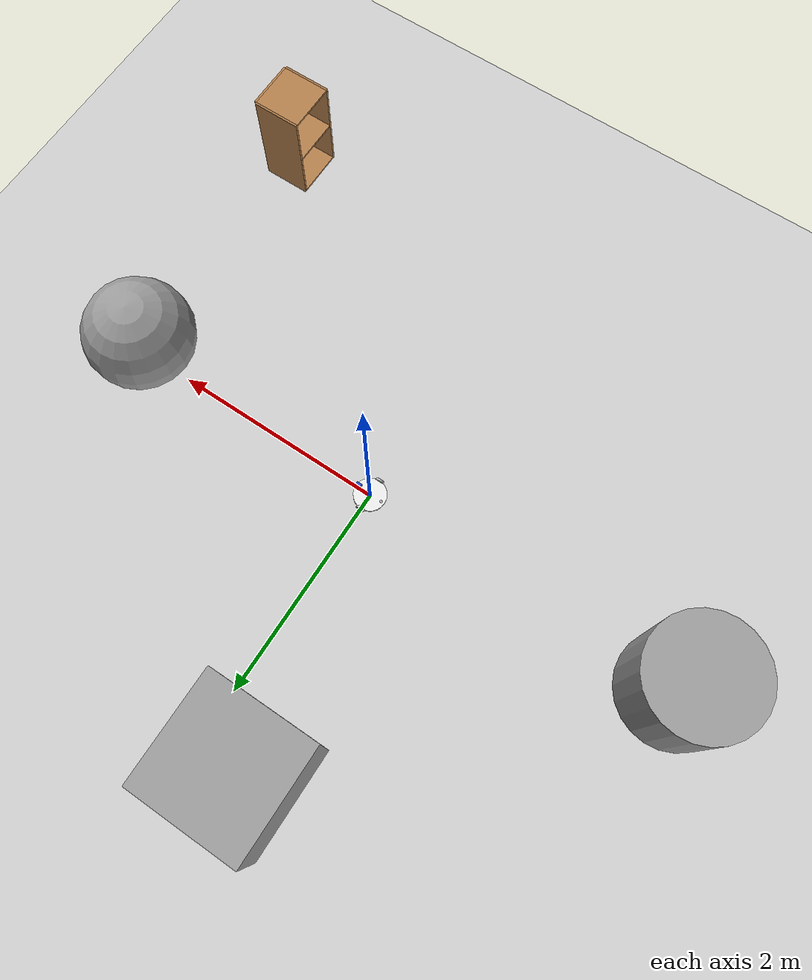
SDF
<sdf version="1.4">
 <world name="default">
  <light name="sun" type="directional">
   <pose>0 0 10 0 -0 0</pose>
   <diffuse>0.8 0.8 0.8 1</diffuse>
   <specular>0.2 0.2 0.2 1</specular>
   <attenuation>
    <range>1000</range>
    <constant>0.9</constant>
    <linear>0.01</linear>
    <quadratic>0.001</quadratic>
   </attenuation>
   <direction>-0.5 0.1 -0.9</direction>
  </light>
  <model name="ground_plane">
   <static>1</static>
   <link name="link">
    <collision name="collision">
     <geometry><plane><normal>0 0 1</normal><size>100 100</size></plane></geometry>
     <surface><friction><ode><mu>100</mu><mu2>50</mu2></ode></friction></surface>
    </collision>
    <visual name="visual">
     <cast_shadows>0</cast_shadows>
     <geometry><plane><normal>0 0 1</normal><size>100 100</size></plane></geometry>
     <material>
      <script><uri>file://media/materials/scripts/gazebo.material</uri><name>Gazebo/Grey</name></script>
     </material>
    </visual>
    <velocity_decay><linear>0</linear><angular>0</angular></velocity_decay>
   </link>
  </model>
  <physics type="ode">
   <max_step_size>0.001</max_step_size>
   <real_time_factor>1</real_time_factor>
   <real_time_update_rate>1000</real_time_update_rate>
   <gravity>0 0 -9.8</gravity>
  </physics>
  <scene><ambient>0.4 0.4 0.4 1</ambient><background>0.7 0.7 0.7 1</background><shadows>1</shadows></scene>
  <spherical_coordinates>
   <surface_model>EARTH_WGS84</surface_model>
   <latitude_deg>0</latitude_deg>
   <longitude_deg>0</longitude_deg>
   <elevation>0</elevation>
   <heading_deg>0</heading_deg>
  </spherical_coordinates>
  <model name="simple_robot">
   <link name="base_link">
    <inertial>
     <pose>-0.00166667 0 0.00133333 0 -0 0</pose>
     <mass>6</mass>
     <inertia>
      <ixx>0.030346</ixx>
      <ixy>0</ixy>
      <ixz>0.000191667</ixz>
      <iyy>0.0460543</iyy>
      <iyz>0</iyz>
      <izz>0.0739583</izz>
     </inertia>
    </inertial>
    <collision name="base_link_collision">
     <geometry><cylinder><length>0.02</length><radius>0.15</radius></cylinder></geometry>
    </collision>
    <collision name="base_link_collision_caster_back_link">
     <pose>-0.135 9.79355e-14 -0.011 0 -0 0</pose>
     <geometry><sphere><radius>0.025</radius></sphere></geometry>
    </collision>
    <collision name="base_link_collision_caster_front_link">
     <pose>0.115 9.79355e-14 -0.013 0 -0 0</pose>
     <geometry><sphere><radius>0.025</radius></sphere></geometry>
    </collision>
    <visual name="base_link_visual">
     <geometry><cylinder><length>0.02</length><radius>0.15</radius></cylinder></geometry>
     <material><script><name>Gazebo/White</name><uri>__default__</uri></script></material>
    </visual>
    <visual name="base_link_visual_caster_back_link">
     <pose>-0.115 9.79355e-14 -0.011 0 -0 0</pose>
     <geometry><sphere><radius>0.025</radius></sphere></geometry>
    </visual>
    <visual name="base_link_visual_caster_front_link">
     <pose>0.115 9.79355e-14 -0.013 0 -0 0</pose>
     <geometry><sphere><radius>0.025</radius></sphere></geometry>
    </visual>
    <visual name="base_link_visual_hokuyo_link">
     <pose>0.125 0 0.0325 0 -0 0</pose>
     <geometry><box><size>0.05 0.05 0.05</size></box></geometry>
     <material><script><name>Gazebo/Blue</name><uri>__default__</uri></script></material>
    </visual>
    <velocity_decay><linear>0</linear><angular>0</angular></velocity_decay>
    <velocity_decay><linear>0</linear><angular>0</angular></velocity_decay>
    <sensor name="head_hokuyo_sensor" type="ray">
     <visualize>0</visualize>
     <update_rate>40</update_rate>
     <ray>
      <scan>
       <horizontal>
        <samples>720</samples>
        <resolution>1</resolution>
        <min_angle>-1.5708</min_angle>
        <max_angle>1.5708</max_angle>
       </horizontal>
      </scan>
      <range><min>0.1</min><max>10</max><resolution>0.001</resolution></range>
     </ray>
     <plugin name="gazebo_ros_head_hokuyo_controller" filename="libgazebo_ros_laser.so">
      <topicName>/scan</topicName>
      <frameName>hokuyo_link</frameName>
      <robotNamespace>/</robotNamespace>
     </plugin>
     <pose>0.125 0 0.0325 0 -0 0</pose>
    </sensor>
   </link>
   <link name="front_left_wheel">
    <pose>0 -0.15 0 0 -0 0</pose>
    <inertial>
     <mass>2.5</mass>
     <inertia>
      <ixx>0.00108333</ixx>
      <ixy>0</ixy>
      <ixz>0</ixz>
      <iyy>0.00108333</iyy>
      <iyz>0</iyz>
      <izz>0.002</izz>
     </inertia>
    </inertial>
    <collision name="front_left_wheel_collision">
     <pose>0 0 0 1.5708 -0 0</pose>
     <geometry><cylinder><length>0.02</length><radius>0.04</radius></cylinder></geometry>
    </collision>
    <visual name="front_left_wheel_visual">
     <pose>0 0 0 1.5708 -0 0</pose>
     <geometry><cylinder><length>0.02</length><radius>0.04</radius></cylinder></geometry>
    </visual>
    <velocity_decay><linear>0</linear><angular>0</angular></velocity_decay>
   </link>
   <joint name="front_left_wheel_joint" type="revolute">
    <child>front_left_wheel</child>
    <parent>base_link</parent>
    <axis><xyz>0 1 0</xyz><limit><lower>-1e+16</lower><upper>1e+16</upper></limit></axis>
   </joint>
   <link name="front_right_wheel">
    <pose>0 0.15 0 0 -0 0</pose>
    <inertial>
     <mass>2.5</mass>
     <inertia>
      <ixx>0.00108333</ixx>
      <ixy>0</ixy>
      <ixz>0</ixz>
      <iyy>0.00108333</iyy>
      <iyz>0</iyz>
      <izz>0.002</izz>
     </inertia>
    </inertial>
    <collision name="front_right_wheel_collision">
     <pose>0 0 0 1.5708 -0 0</pose>
     <geometry><cylinder><length>0.02</length><radius>0.04</radius></cylinder></geometry>
    </collision>
    <visual name="front_right_wheel_visual">
     <pose>0 0 0 1.5708 -0 0</pose>
     <geometry><cylinder><length>0.02</length><radius>0.04</radius></cylinder></geometry>
    </visual>
    <velocity_decay><linear>0</linear><angular>0</angular></velocity_decay>
   </link>
   <joint name="front_right_wheel_joint" type="revolute">
    <child>front_right_wheel</child>
    <parent>base_link</parent>
    <axis><xyz>0 1 0</xyz><limit><lower>-1e+16</lower><upper>1e+16</upper></limit></axis>
   </joint>
   <static>0</static>
   <plugin name="differential_drive_controller_front" filename="libgazebo_ros_diff_drive.so">
    <rosDebugLevel>Debug</rosDebugLevel>
    <publishWheelTF>True</publishWheelTF>
    <publishTf>1</publishTf>
    <publishWheelJointState>true</publishWheelJointState>
    <alwaysOn>true</alwaysOn>
    <updateRate>100.0</updateRate>
    <leftJoint>front_left_wheel_joint</leftJoint>
    <rightJoint>front_right_wheel_joint</rightJoint>
    <wheelSeparation>0.3</wheelSeparation>
    <wheelDiameter>0.08</wheelDiameter>
    <broadcastTF>1</broadcastTF>
    <wheelTorque>30</wheelTorque>
    <wheelAcceleration>1.8</wheelAcceleration>
    <commandTopic>cmd_vel</commandTopic>
    <odometryFrame>odom</odometryFrame>
    <odometryTopic>odom</odometryTopic>
    <robotBaseFrame>base_link</robotBaseFrame>
    <robotNamespace>/</robotNamespace>
   </plugin>
   <pose>-0.000486 -0.000185 0.04 -1.69481e-21 -0.02967 0.000481</pose>
  </model>
  <model name="unit_box_1">
   <pose>-0.417076 2.4488 0.5 0 -0 0</pose>
   <link name="link">
    <inertial>
     <mass>1</mass>
     <inertia><ixx>1</ixx><ixy>0</ixy><ixz>0</ixz><iyy>1</iyy><iyz>0</iyz><izz>1</izz></inertia>
    </inertial>
    <collision name="collision"><geometry><box><size>1 1 1</size></box></geometry></collision>
    <visual name="visual">
     <geometry><box><size>1 1 1</size></box></geometry>
     <material>
      <script><uri>file://media/materials/scripts/gazebo.material</uri><name>Gazebo/Grey</name></script>
     </material>
    </visual>
    <velocity_decay><linear>0</linear><angular>0</angular></velocity_decay>
   </link>
   <static>0</static>
  </model>
  <model name="unit_cylinder_1">
   <pose>-3 -0 0.499998 1e-06 -0 0</pose>
   <link name="link">
    <inertial>
     <mass>1</mass>
     <inertia><ixx>1</ixx><ixy>0</ixy><ixz>0</ixz><iyy>1</iyy><iyz>0</iyz><izz>1</izz></inertia>
    </inertial>
    <collision name="collision">
     <geometry><cylinder><radius>0.5</radius><length>1</length></cylinder></geometry>
    </collision>
    <visual name="visual">
     <geometry><cylinder><radius>0.5</radius><length>1</length></cylinder></geometry>
     <material>
      <script><uri>file://media/materials/scripts/gazebo.material</uri><name>Gazebo/Grey</name></script>
     </material>
    </visual>
    <velocity_decay><linear>0</linear><angular>0</angular></velocity_decay>
   </link>
   <static>0</static>
  </model>
  <model name="unit_sphere_1">
   <pose>2.42516 0 0.5 0 -0 0</pose>
   <link name="link">
    <inertial>
     <mass>1</mass>
     <inertia><ixx>1</ixx><ixy>0</ixy><ixz>0</ixz><iyy>1</iyy><iyz>0</iyz><izz>1</izz></inertia>
    </inertial>
    <collision name="collision"><geometry><sphere><radius>0.5</radius></sphere></geometry></collision>
    <visual name="visual">
     <geometry><sphere><radius>0.5</radius></sphere></geometry>
     <material>
      <script><uri>file://media/materials/scripts/gazebo.material</uri><name>Gazebo/Grey</name></script>
     </material>
    </visual>
    <velocity_decay><linear>0</linear><angular>0</angular></velocity_decay>
   </link>
   <static>0</static>
  </model>
  <model name="cabinet">
   <static>1</static>
   <link name="cabinet_bottom_plate">
    <inertial>
     <pose>0 0 -1 0 -0 0</pose>
     <inertia><ixx>2.05</ixx><ixy>0</ixy><ixz>0</ixz><iyy>2.05</iyy><iyz>0</iyz><izz>2.05</izz></inertia>
     <mass>25</mass>
    </inertial>
    <collision name="cabinet_bottom_plate_geom">
     <pose>0 0 0.01 0 -0 0</pose>
     <geometry><box><size>0.45 0.45 0.02</size></box></geometry>
    </collision>
    <visual name="cabinet_bottom_plate_geom_visual">
     <pose>0 0 0.01 0 -0 0</pose>
     <geometry><box><size>0.45 0.45 0.02</size></box></geometry>
     <material>
      <script><uri>file://media/materials/scripts/gazebo.material</uri><name>Gazebo/Wood</name></script>
     </material>
    </visual>
    <collision name="cabinet_bottom_plate_geom_cabinet_back_plate">
     <pose>0.235 0 0.51 0 -0 0</pose>
     <geometry><box><size>0.02 0.45 1.02</size></box></geometry>
    </collision>
    <visual name="cabinet_bottom_plate_geom_cabinet_back_plate_visual">
     <pose>0.235 0 0.51 0 -0 0</pose>
     <geometry><box><size>0.02 0.45 1.02</size></box></geometry>
     <material>
      <script><uri>file://media/materials/scripts/gazebo.material</uri><name>Gazebo/Wood</name></script>
     </material>
    </visual>
    <collision name="cabinet_bottom_plate_geom_cabinet_left_plate">
     <pose>0 0.235 0.51 0 -0 0</pose>
     <geometry><box><size>0.45 0.02 1.02</size></box></geometry>
    </collision>
    <visual name="cabinet_bottom_plate_geom_cabinet_left_plate_visual">
     <pose>0 0.235 0.51 0 -0 0</pose>
     <geometry><box><size>0.45 0.02 1.02</size></box></geometry>
     <material>
      <script><uri>file://media/materials/scripts/gazebo.material</uri><name>Gazebo/Wood</name></script>
     </material>
    </visual>
    <collision name="cabinet_bottom_plate_geom_cabinet_middle_plate">
     <pose>0 0 0.51 0 -0 0</pose>
     <geometry><box><size>0.45 0.45 0.02</size></box></geometry>
    </collision>
    <visual name="cabinet_bottom_plate_geom_cabinet_middle_plate_visual">
     <pose>0 0 0.51 0 -0 0</pose>
     <geometry><box><size>0.45 0.45 0.02</size></box></geometry>
     <material>
      <script><uri>file://media/materials/scripts/gazebo.material</uri><name>Gazebo/Wood</name></script>
     </material>
    </visual>
    <collision name="cabinet_bottom_plate_geom_cabinet_right_plate">
     <pose>0 -0.235 0.51 0 -0 0</pose>
     <geometry><box><size>0.45 0.02 1.02</size></box></geometry>
    </collision>
    <visual name="cabinet_bottom_plate_geom_cabinet_right_plate_visual">
     <pose>0 -0.235 0.51 0 -0 0</pose>
     <geometry><box><size>0.45 0.02 1.02</size></box></geometry>
     <material>
      <script><uri>file://media/materials/scripts/gazebo.material</uri><name>Gazebo/Wood</name></script>
     </material>
    </visual>
    <collision name="cabinet_bottom_plate_geom_cabinet_top_plate">
     <pose>0 0 1.01 0 -0 0</pose>
     <geometry><box><size>0.45 0.45 0.02</size></box></geometry>
    </collision>
    <visual name="cabinet_bottom_plate_geom_cabinet_top_plate_visual">
     <pose>0 0 1.01 0 -0 0</pose>
     <geometry><box><size>0.45 0.45 0.02</size></box></geometry>
     <material>
      <script><uri>file://media/materials/scripts/gazebo.material</uri><name>Gazebo/Wood</name></script>
     </material>
    </visual>
    <velocity_decay><linear>0</linear><angular>0</angular></velocity_decay>
   </link>
   <pose>2.49155 -2.47367 0 0 -0 0</pose>
  </model>
 </world>
</sdf>
